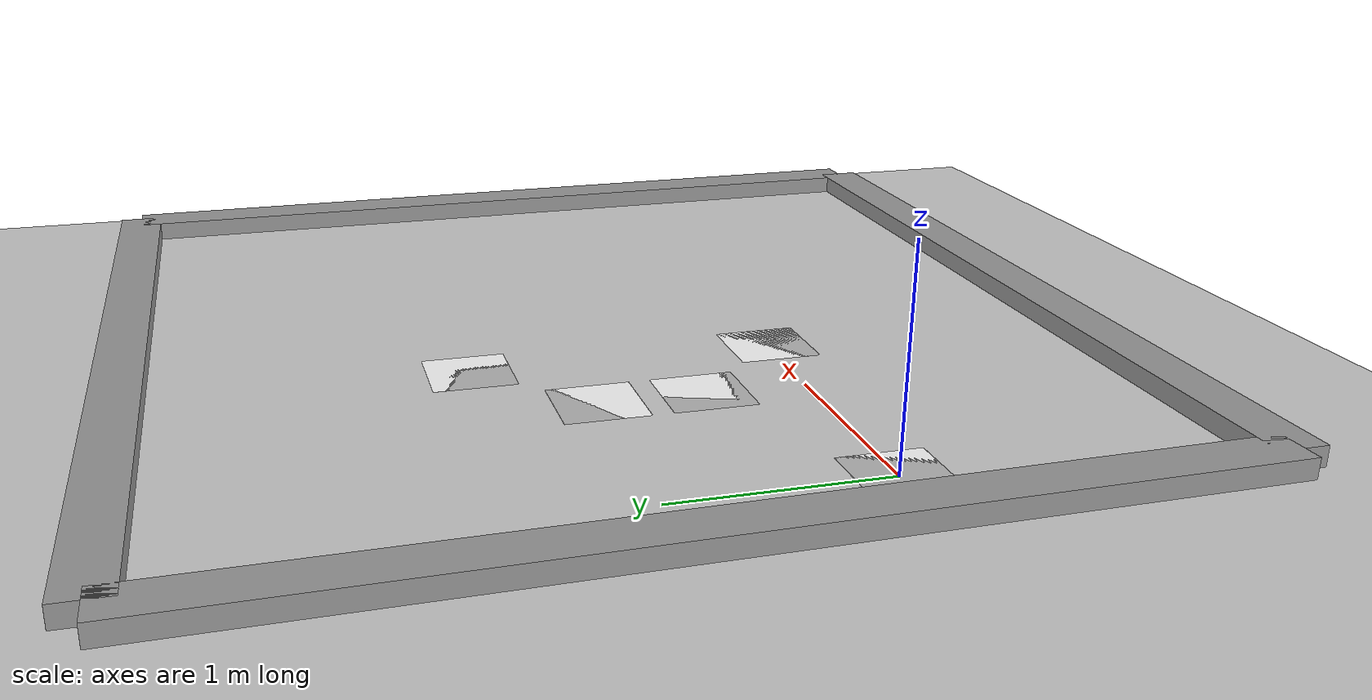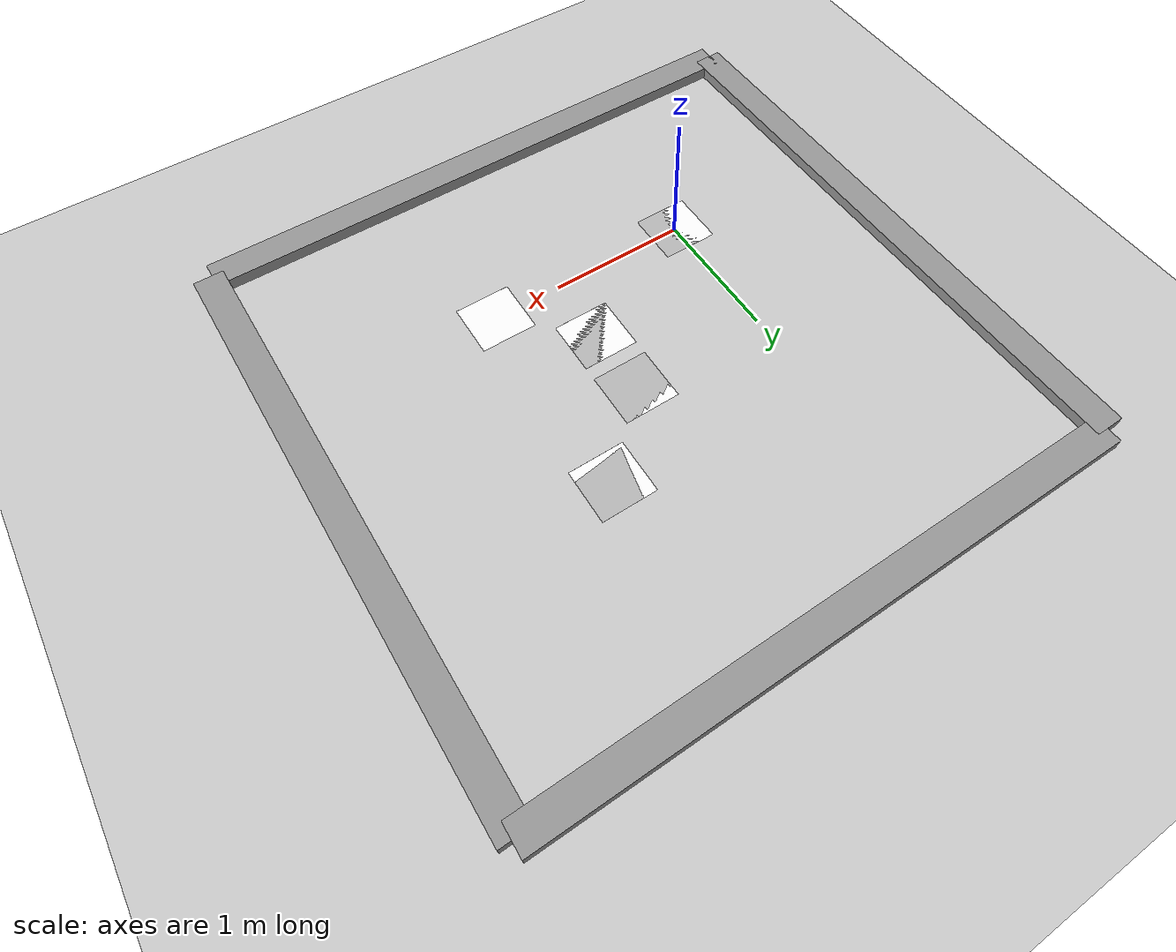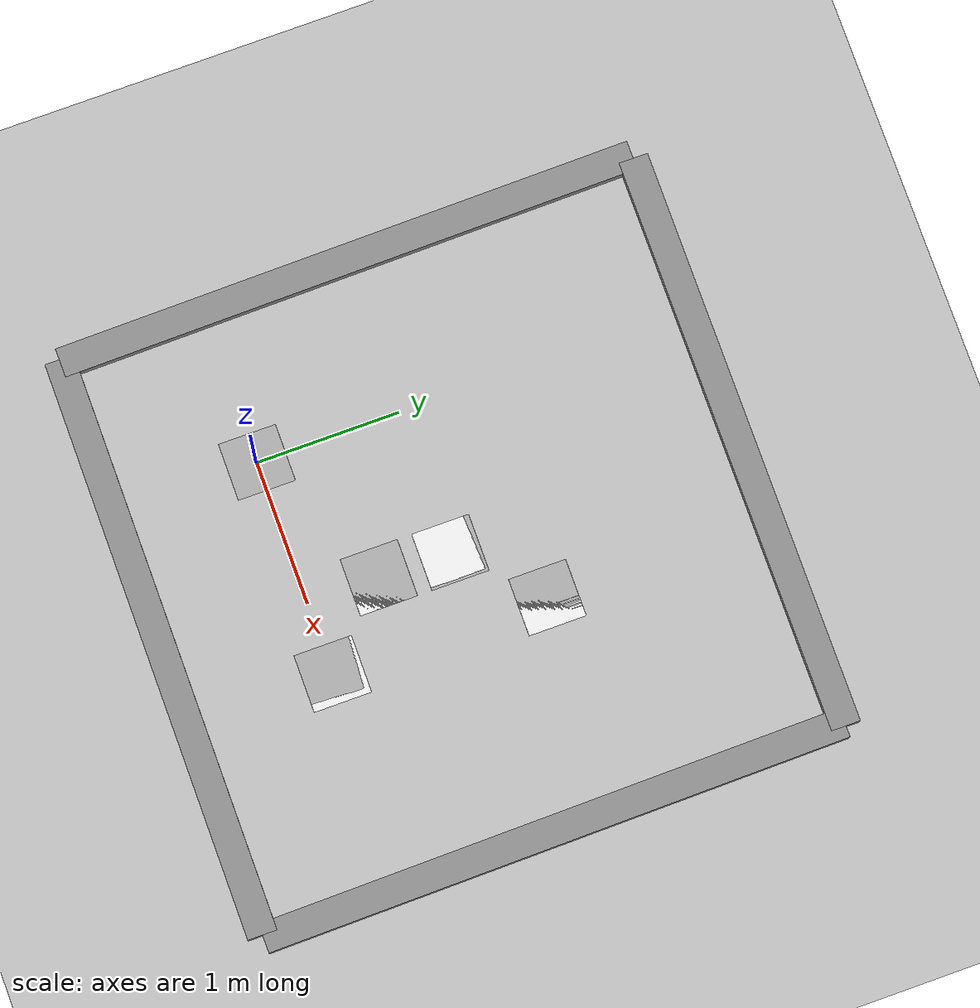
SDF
<sdf version="1.6">
 <world name="default">
  <light name="sun" type="directional">
   <pose>0 0 10 0 -0 0</pose>
   <diffuse>0.8 0.8 0.8 1</diffuse>
   <specular>0.1 0.1 0.1 1</specular>
   <attenuation>
    <range>1000</range>
    <constant>0.9</constant>
    <linear>0.01</linear>
    <quadratic>0.001</quadratic>
   </attenuation>
   <direction>-0.5 0.5 -1</direction>
  </light>
  <model name="ground_plane">
   <static>1</static>
   <link name="link">
    <collision name="collision">
     <geometry><plane><normal>0 0 1</normal><size>100 100</size></plane></geometry>
     <surface><friction><ode><mu>100</mu><mu2>50</mu2></ode></friction></surface>
    </collision>
    <visual name="visual">
     <cast_shadows>0</cast_shadows>
     <geometry><plane><normal>0 0 1</normal><size>100 100</size></plane></geometry>
     <material>
      <script><uri>file://media/materials/scripts/gazebo.material</uri><name>Gazebo/Grey</name></script>
     </material>
    </visual>
   </link>
  </model>
  <gravity>0 0 -9.8</gravity>
  <magnetic_field>6e-06 2.3e-05 -4.2e-05</magnetic_field>
  <atmosphere type="adiabatic"/>
  <physics name="default_physics" default="0" type="ode">
   <max_step_size>0.001</max_step_size>
   <real_time_factor>1</real_time_factor>
   <real_time_update_rate>1000</real_time_update_rate>
  </physics>
  <scene><ambient>0.4 0.4 0.4 1</ambient><background>0.7 0.7 0.7 1</background><shadows>1</shadows></scene>
  <spherical_coordinates>
   <surface_model>EARTH_WGS84</surface_model>
   <latitude_deg>0</latitude_deg>
   <longitude_deg>0</longitude_deg>
   <elevation>0</elevation>
   <heading_deg>0</heading_deg>
  </spherical_coordinates>
  <model name="wall1">
   <static>1</static>
   <link name="link">
    <pose>0 0 0.42 0 -0 0</pose>
    <collision name="collision"><geometry><box><size>4 0.2 0.084</size></box></geometry></collision>
    <visual name="visual">
     <cast_shadows>0</cast_shadows>
     <geometry><box><size>4 0.2 0.084</size></box></geometry>
     <material>
      <script>
       <uri>model://grey_wall/materials/scripts</uri>
       <uri>model://grey_wall/materials/textures</uri>
       <name>vrc/grey_wall</name>
      </script>
     </material>
    </visual>
   </link>
   <pose>-1 1.0 0 0 -0 -1.55905</pose>
  </model>
  <model name="wall2">
   <static>1</static>
   <link name="link">
    <pose>0 0 0.42 0 -0 0</pose>
    <collision name="collision"><geometry><box><size>4 0.2 0.084</size></box></geometry></collision>
    <visual name="visual">
     <cast_shadows>0</cast_shadows>
     <geometry><box><size>4 0.2 0.084</size></box></geometry>
     <material>
      <script>
       <uri>model://grey_wall/materials/scripts</uri>
       <uri>model://grey_wall/materials/textures</uri>
       <name>vrc/grey_wall</name>
      </script>
     </material>
    </visual>
   </link>
   <pose>1.0 3.0 0 0 -0 0</pose>
  </model>
  <model name="wall3">
   <static>1</static>
   <link name="link">
    <pose>0 0 0.42 0 -0 0</pose>
    <collision name="collision"><geometry><box><size>4 0.2 0.084</size></box></geometry></collision>
    <visual name="visual">
     <cast_shadows>0</cast_shadows>
     <geometry><box><size>4 0.2 0.084</size></box></geometry>
     <material>
      <script>
       <uri>model://grey_wall/materials/scripts</uri>
       <uri>model://grey_wall/materials/textures</uri>
       <name>vrc/grey_wall</name>
      </script>
     </material>
    </visual>
   </link>
   <pose>3.0 1.0 0 0 -0 -1.55905</pose>
  </model>
  <model name="wall4">
   <static>1</static>
   <link name="link">
    <pose>0 0 0.42 0 -0 0</pose>
    <collision name="collision"><geometry><box><size>4 0.2 0.084</size></box></geometry></collision>
    <visual name="visual">
     <cast_shadows>0</cast_shadows>
     <geometry><box><size>4 0.2 0.084</size></box></geometry>
     <material>
      <script>
       <uri>model://grey_wall/materials/scripts</uri>
       <uri>model://grey_wall/materials/textures</uri>
       <name>vrc/grey_wall</name>
      </script>
     </material>
    </visual>
   </link>
   <pose>1.0 -1 0 0 -0 0</pose>
  </model>
  <model name="dirt_1">
   <link name="cover">
    <pose>0 -0.000108 0.015405 0 -0 0</pose>
    <visual name="visual">
     <geometry><box><size>.4 .4 .00001</size></box></geometry>
     <material>
      <script>
       <uri>model://dirt_1/materials/scripts/dirt_1.material</uri>
       <uri>model://dirt_1/materials/textures/cover1.jpg</uri>
       <name>dirt_1</name>
      </script>
     </material>
    </visual>
    <collision name="collision">
     <geometry><box><size>.4 .4 .00001</size></box></geometry>
     <surface><contact>/n</contact><friction><ode><mu>1000</mu><mu2>1000</mu2></ode></friction></surface>
    </collision>
    <inertial>
     <inertia><ixx>0.00058</ixx><ixy>0</ixy><ixz>0</ixz><iyy>0.00058</iyy><iyz>0</iyz><izz>0.00019</izz></inertia>
     <mass>0.05</mass>
    </inertial>
   </link>
   <link name="page">
    <pose>0 0.000608 0.015405 0 -0 0</pose>
    <visual name="visual">
     <geometry><box><size>.4 .4 .00001</size></box></geometry>
     <material>
      <lighting>1</lighting>
      <ambient>1 1 1 1</ambient>
      <diffuse>1 1 1 1</diffuse>
      <specular>0.01 0.01 0.01 1</specular>
      <emissive>0 0 0 1</emissive>
      <shader type="vertex"><normal_map>__default__</normal_map></shader>
     </material>
    </visual>
    <collision name="collision">
     <geometry><box><size>.4 .4 .00001</size></box></geometry>
     <surface><contact>/n</contact><friction><ode><mu>1000</mu><mu2>1000</mu2></ode></friction></surface>
    </collision>
    <inertial>
     <inertia><ixx>0.00058</ixx><ixy>0</ixy><ixz>0</ixz><iyy>0.00058</iyy><iyz>0</iyz><izz>0.00019</izz></inertia>
     <mass>0.05</mass>
    </inertial>
   </link>
   <static>0</static>
   <pose>1.5 0.0 -0.000405 -1e-06 1e-06 0</pose>
  </model>
  <model name="dirt_2">
   <link name="cover">
    <pose>0 -0.000108 0.015405 0 -0 0</pose>
    <visual name="visual">
     <geometry><box><size>.4 .4 .00001</size></box></geometry>
     <material>
      <script>
       <uri>model://dirt_1/materials/scripts/dirt_2.material</uri>
       <uri>model://dirt_1/materials/textures/cover2.jpg</uri>
       <name>dirt_2</name>
      </script>
     </material>
    </visual>
    <collision name="collision">
     <geometry><box><size>.4 .4 .00001</size></box></geometry>
     <surface><contact>/n</contact><friction><ode><mu>1000</mu><mu2>1000</mu2></ode></friction></surface>
    </collision>
    <inertial>
     <inertia><ixx>0.00058</ixx><ixy>0</ixy><ixz>0</ixz><iyy>0.00058</iyy><iyz>0</iyz><izz>0.00019</izz></inertia>
     <mass>0.05</mass>
    </inertial>
   </link>
   <link name="page">
    <pose>0 0.000608 0.015405 0 -0 0</pose>
    <visual name="visual">
     <geometry><box><size>.4 .4 .00001</size></box></geometry>
     <material>
      <lighting>1</lighting>
      <ambient>1 1 1 1</ambient>
      <diffuse>1 1 1 1</diffuse>
      <specular>0.01 0.01 0.01 1</specular>
      <emissive>0 0 0 1</emissive>
      <shader type="vertex"><normal_map>__default__</normal_map></shader>
     </material>
    </visual>
    <collision name="collision">
     <geometry><box><size>.4 .4 .00001</size></box></geometry>
     <surface><contact>/n</contact><friction><ode><mu>1000</mu><mu2>1000</mu2></ode></friction></surface>
    </collision>
    <inertial>
     <inertia><ixx>0.00058</ixx><ixy>0</ixy><ixz>0</ixz><iyy>0.00058</iyy><iyz>0</iyz><izz>0.00019</izz></inertia>
     <mass>0.05</mass>
    </inertial>
   </link>
   <static>0</static>
   <pose>1.0 1.0 -0.000405 -1e-06 1e-06 0</pose>
  </model>
  <model name="dirt_3">
   <link name="cover">
    <pose>0 -0.000108 0.015405 0 -0 0</pose>
    <visual name="visual">
     <geometry><box><size>.4 .4 .00001</size></box></geometry>
     <material>
      <script>
       <uri>model://dirt_1/materials/scripts/dirt_3.material</uri>
       <uri>model://dirt_1/materials/textures/cover3.jpg</uri>
       <name>dirt_3</name>
      </script>
     </material>
    </visual>
    <collision name="collision">
     <geometry><box><size>.4 .4 .00001</size></box></geometry>
     <surface><contact>/n</contact><friction><ode><mu>1000</mu><mu2>1000</mu2></ode></friction></surface>
    </collision>
    <inertial>
     <inertia><ixx>0.00058</ixx><ixy>0</ixy><ixz>0</ixz><iyy>0.00058</iyy><iyz>0</iyz><izz>0.00019</izz></inertia>
     <mass>0.05</mass>
    </inertial>
   </link>
   <link name="page">
    <pose>0 0.000608 0.015405 0 -0 0</pose>
    <visual name="visual">
     <geometry><box><size>.4 .4 .00001</size></box></geometry>
     <material>
      <lighting>1</lighting>
      <ambient>1 1 1 1</ambient>
      <diffuse>1 1 1 1</diffuse>
      <specular>0.01 0.01 0.01 1</specular>
      <emissive>0 0 0 1</emissive>
      <shader type="vertex"><normal_map>__default__</normal_map></shader>
     </material>
    </visual>
    <collision name="collision">
     <geometry><box><size>.4 .4 .00001</size></box></geometry>
     <surface><contact>/n</contact><friction><ode><mu>1000</mu><mu2>1000</mu2></ode></friction></surface>
    </collision>
    <inertial>
     <inertia><ixx>0.00058</ixx><ixy>0</ixy><ixz>0</ixz><iyy>0.00058</iyy><iyz>0</iyz><izz>0.00019</izz></inertia>
     <mass>0.05</mass>
    </inertial>
   </link>
   <static>0</static>
   <pose>1.5 1.5 -0.000405 -1e-06 1e-06 0</pose>
  </model>
  <model name="dirt_4">
   <link name="cover">
    <pose>0 -0.000108 0.015405 0 -0 0</pose>
    <visual name="visual">
     <geometry><box><size>.4 .4 .00001</size></box></geometry>
     <material>
      <script>
       <uri>model://dirt_1/materials/scripts/dirt_4.material</uri>
       <uri>model://dirt_1/materials/textures/cover4.jpg</uri>
       <name>dirt_4</name>
      </script>
     </material>
    </visual>
    <collision name="collision">
     <geometry><box><size>.4 .4 .00001</size></box></geometry>
     <surface><contact>/n</contact><friction><ode><mu>1000</mu><mu2>1000</mu2></ode></friction></surface>
    </collision>
    <inertial>
     <inertia><ixx>0.00058</ixx><ixy>0</ixy><ixz>0</ixz><iyy>0.00058</iyy><iyz>0</iyz><izz>0.00019</izz></inertia>
     <mass>0.05</mass>
    </inertial>
   </link>
   <link name="page">
    <pose>0 0.000608 0.015405 0 -0 0</pose>
    <visual name="visual">
     <geometry><box><size>.4 .4 .00001</size></box></geometry>
     <material>
      <lighting>1</lighting>
      <ambient>1 1 1 1</ambient>
      <diffuse>1 1 1 1</diffuse>
      <specular>0.01 0.01 0.01 1</specular>
      <emissive>0 0 0 1</emissive>
      <shader type="vertex"><normal_map>__default__</normal_map></shader>
     </material>
    </visual>
    <collision name="collision">
     <geometry><box><size>.4 .4 .00001</size></box></geometry>
     <surface><contact>/n</contact><friction><ode><mu>1000</mu><mu2>1000</mu2></ode></friction></surface>
    </collision>
    <inertial>
     <inertia><ixx>0.00058</ixx><ixy>0</ixy><ixz>0</ixz><iyy>0.00058</iyy><iyz>0</iyz><izz>0.00019</izz></inertia>
     <mass>0.05</mass>
    </inertial>
   </link>
   <static>0</static>
   <pose>0.0 0.0 -0.000405 -1e-06 1e-06 0</pose>
  </model>
  <model name="dirt_5">
   <link name="cover">
    <pose>0 -0.000108 0.015405 0 -0 0</pose>
    <visual name="visual">
     <geometry><box><size>.4 .4 .00001</size></box></geometry>
     <material>
      <script>
       <uri>model://dirt_1/materials/scripts/dirt_5.material</uri>
       <uri>model://dirt_1/materials/textures/cover5.jpg</uri>
       <name>dirt_5</name>
      </script>
     </material>
    </visual>
    <collision name="collision">
     <geometry><box><size>.4 .4 .00001</size></box></geometry>
     <surface><contact>/n</contact><friction><ode><mu>1000</mu><mu2>1000</mu2></ode></friction></surface>
    </collision>
    <inertial>
     <inertia><ixx>0.00058</ixx><ixy>0</ixy><ixz>0</ixz><iyy>0.00058</iyy><iyz>0</iyz><izz>0.00019</izz></inertia>
     <mass>0.05</mass>
    </inertial>
   </link>
   <link name="page">
    <pose>0 0.000608 0.015405 0 -0 0</pose>
    <visual name="visual">
     <geometry><box><size>.4 .4 .00001</size></box></geometry>
     <material>
      <lighting>1</lighting>
      <ambient>1 1 1 1</ambient>
      <diffuse>1 1 1 1</diffuse>
      <specular>0.01 0.01 0.01 1</specular>
      <emissive>0 0 0 1</emissive>
      <shader type="vertex"><normal_map>__default__</normal_map></shader>
     </material>
    </visual>
    <collision name="collision">
     <geometry><box><size>.4 .4 .00001</size></box></geometry>
     <surface><contact>/n</contact><friction><ode><mu>1000</mu><mu2>1000</mu2></ode></friction></surface>
    </collision>
    <inertial>
     <inertia><ixx>0.00058</ixx><ixy>0</ixy><ixz>0</ixz><iyy>0.00058</iyy><iyz>0</iyz><izz>0.00019</izz></inertia>
     <mass>0.05</mass>
    </inertial>
   </link>
   <static>0</static>
   <pose>1.0 0.5 -0.000405 -1e-06 1e-06 0</pose>
  </model>
 </world>
</sdf>
